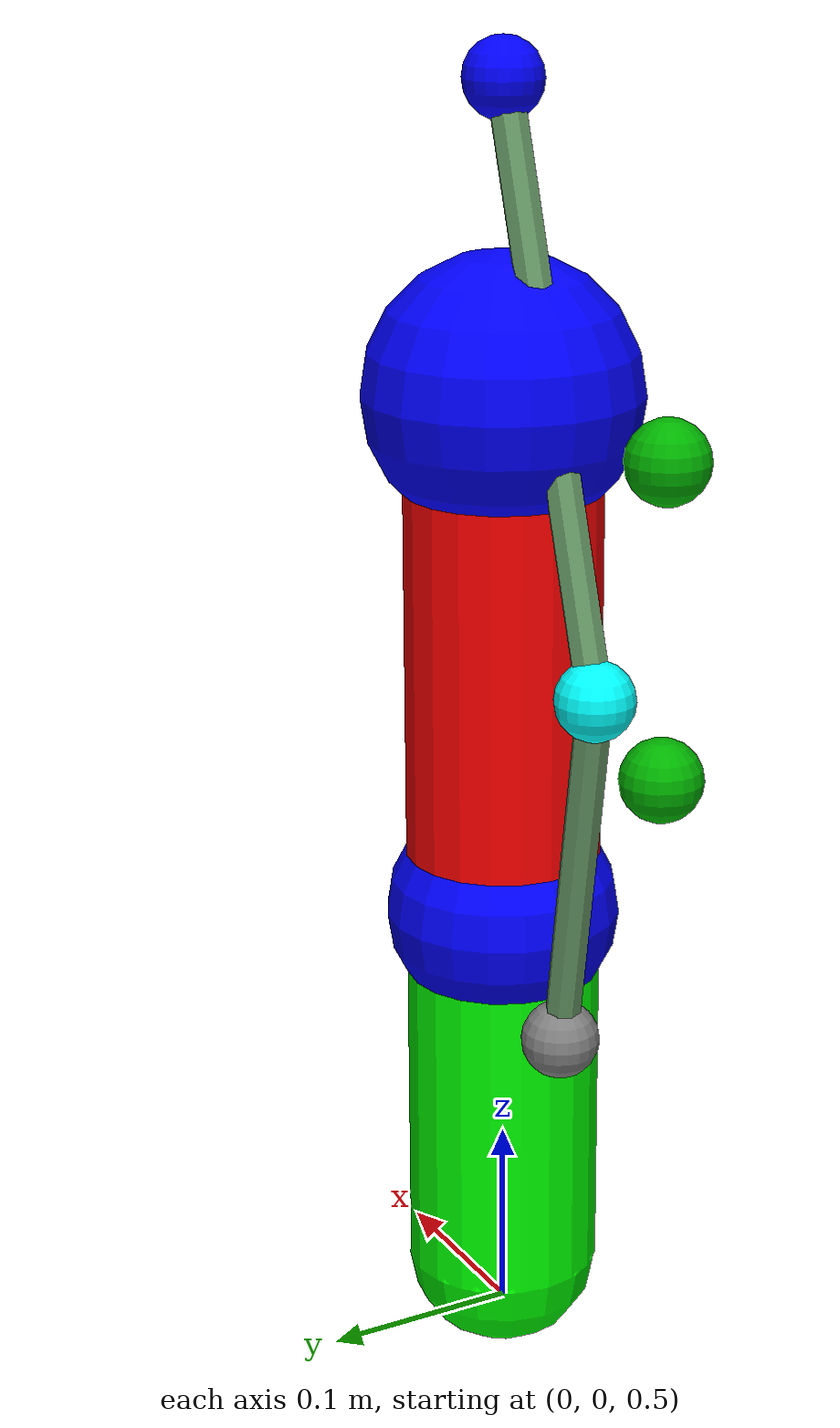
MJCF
<mujoco model="Arm">
	<option gravity="0 0 -9.81" timestep="0.01"/>

    <asset>
        <!-- Texture for the floor -->
        <texture name="texplane" type="2d" builtin="checker" rgb1="0.8 0.8 0.8" rgb2="0.2 0.2 0.2" width="512" height="512" mark="cross" markrgb="1 0 0"/>
        <material name="matplane" texture="texplane" texrepeat="4 4" texuniform="true"/>
    </asset>

    <worldbody>
        <!-- Floor Geometry -->
        <geom name="floor" type="plane" size="10 10 0.1" pos="0 0 0" material="matplane" rgba="0.8 0.8 0.8 1"/>
        <site name = "site0" pos="0 0 1.15" size="0.02" type="sphere" rgba="0 0 255 1" />
        <site name="x0" pos="-0.15 0 1" size="0.02" rgba="0 .7 0 1" group="1"/>

    <body name="shoulder" pos="0 0 1">
	    <site name="site1" type="sphere" pos="-0.09 0 -.13" size="0.02" rgba="0 255 255 1"/>
        <site name="x1" pos="-0.15 0 -.15" size="0.02" rgba="0 .7 0 1" group="1"/>
        <joint name="shoulder_joint" type="ball" />
        <geom name="geom_shoulder" type="sphere" size="0.07" rgba="0 0 255 1" />
<!-- Upper Arm (Red Rod) Extending Downward -->
            <body name="upper_arm" pos="0 0 0">

            <!-- Upper Arm Geometry -->
            <geom name="geom_upperarm" type="capsule" size="0.05 0.2" fromto="0 0 0 0 0 -0.27" rgba="255 0 0 1" />

                <body name="elbow" pos="0 0 -0.27">

                <!-- Elbow Sphere Geometry (Blue) -->
                <geom name="geom_elbow" type="sphere" size="0.06" rgba="0 0 255 1" />
                <site name="site2" pos="-0.06 0 -.05" size="0.02"/>
                <!-- Elbow Hinge Joint -->
                <joint name="elbow_joint" type="hinge" axis="0 1 0" range="0 135" />

                    <!-- Forearm (Green Rod) Extending from Elbow -->
                    <body name="forearm" pos="0 0 0">

                    <!-- Forearm Geometry -->
                    <geom name="geom_forearm" type="capsule" size="0.05 0.2" fromto="0 0 0 0 0 -0.2" rgba="0 255 0 1" />

                    </body>
                </body>
            </body>
	</body>
</worldbody>

<tendon>

    <spatial name="bicep" width="0.009" rgba=".4 .6 .4 1">
      <site site="site0"/>
      <geom geom="geom_shoulder" sidesite="x0"/>
      <site site="site1"/>
      <geom geom="geom_elbow" sidesite="x1"/>
      <site site="site2"/>
    </spatial>
  </tendon>

      <actuator>
        <muscle name="bicep" tendon="bicep" lengthrange="0 5" ctrlrange="0 1"/>
    </actuator>
</mujoco>
